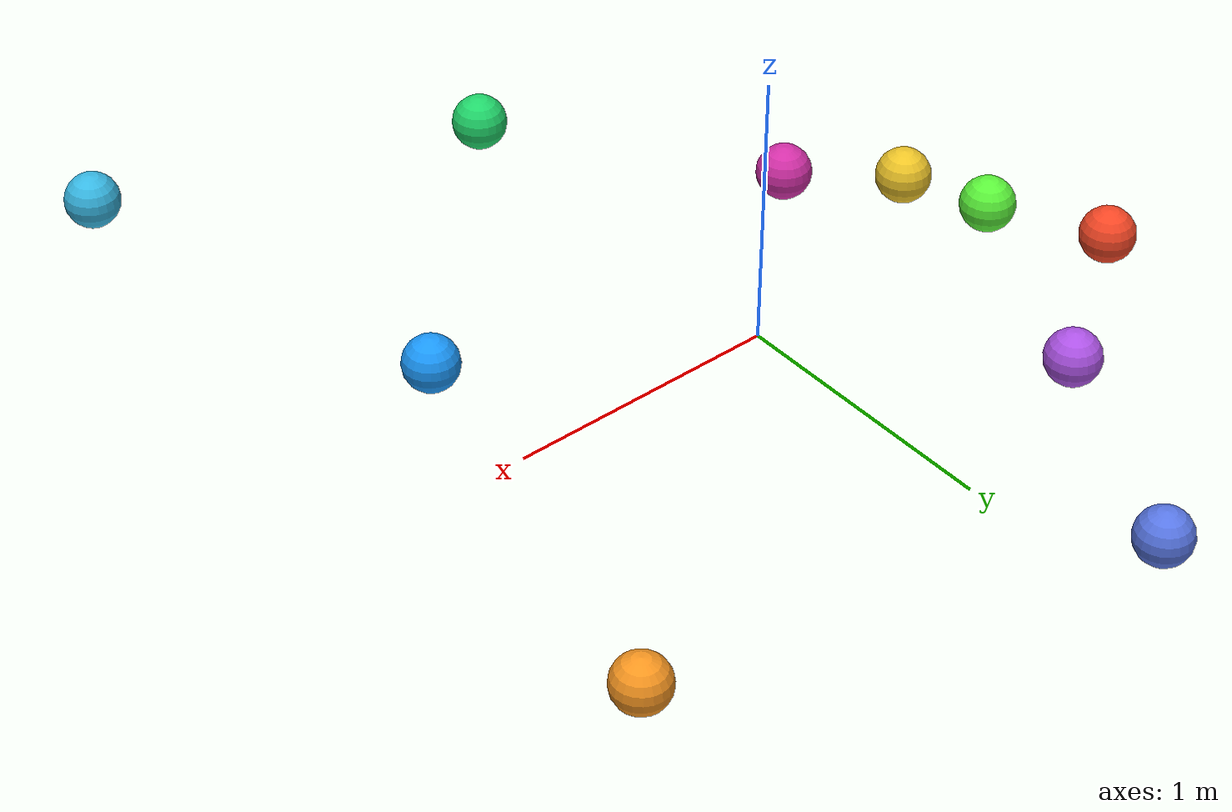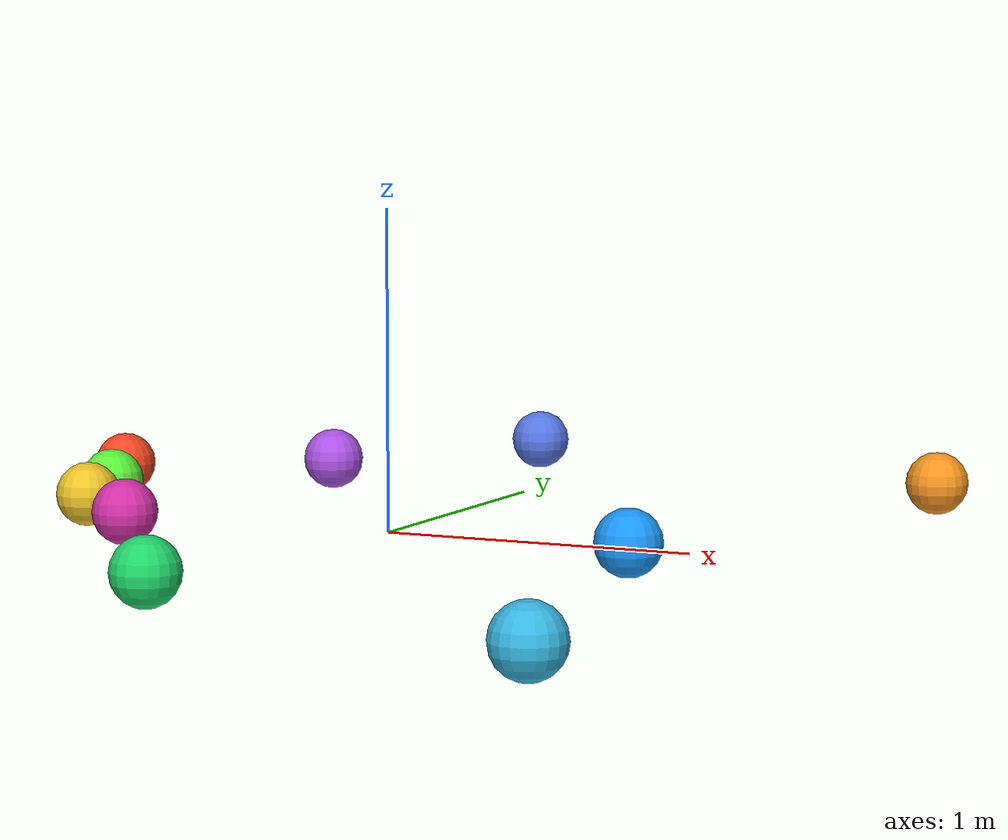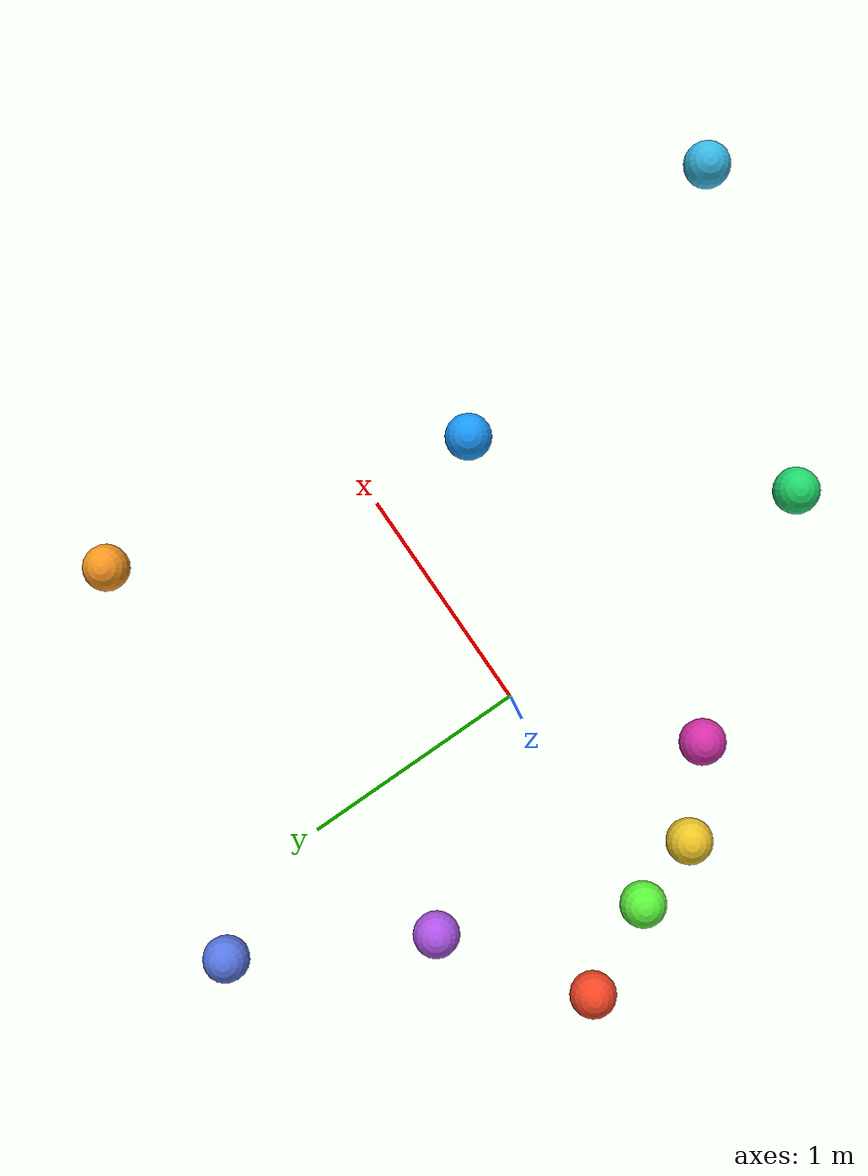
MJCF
<?xml version='1.0' encoding='utf-8'?>
<mujoco model="random_spheres">
  <option timestep="0.01" gravity="0 0 -9.81" />
  <worldbody>
    <geom name="floor" type="plane" size="50 50 0.1" pos="0 0 100" rgba="0.8 0.8 0.8 1" />

    <body name="sphere_0" pos="-1.216 0.426 0.1">
      <geom type="sphere" size="0.1" rgba="0.95 0.27 0.14 1" />
      <freejoint />
    </body>

    <body name="sphere_1" pos="0.038 -1.477 0.1">
      <geom type="sphere" size="0.1" rgba="0.12 0.83 0.41 1" />
      <freejoint />
    </body>

    <body name="sphere_2" pos="-0.635 0.823 0.1">
      <geom type="sphere" size="0.1" rgba="0.67 0.32 0.89 1" />
      <freejoint />
    </body>

    <body name="sphere_3" pos="1.375 -1.947 0.1">
      <geom type="sphere" size="0.1" rgba="0.21 0.71 0.88 1" />
      <freejoint />
    </body>

    <body name="sphere_4" pos="1.418 1.086 0.1">
      <geom type="sphere" size="0.1" rgba="0.96 0.58 0.12 1" />
      <freejoint />
    </body>

    <body name="sphere_5" pos="-1.024 0.038 0.1">
      <geom type="sphere" size="0.1" rgba="0.35 0.95 0.22 1" />
      <freejoint />
    </body>

    <body name="sphere_6" pos="-0.605 -0.554 0.1">
      <geom type="sphere" size="0.1" rgba="0.82 0.18 0.65 1" />
      <freejoint />
    </body>

    <body name="sphere_7" pos="1.006 -0.475 0.1">
      <geom type="sphere" size="0.1" rgba="0.10 0.59 0.97 1" />
      <freejoint />
    </body>

    <body name="sphere_8" pos="-0.916 -0.272 0.1">
      <geom type="sphere" size="0.1" rgba="0.92 0.76 0.15 1" />
      <freejoint />
    </body>

    <body name="sphere_9" pos="-0.218 1.606 0.1">
      <geom type="sphere" size="0.1" rgba="0.34 0.46 0.89 1" />
      <freejoint />
    </body>
  </worldbody>
</mujoco>
